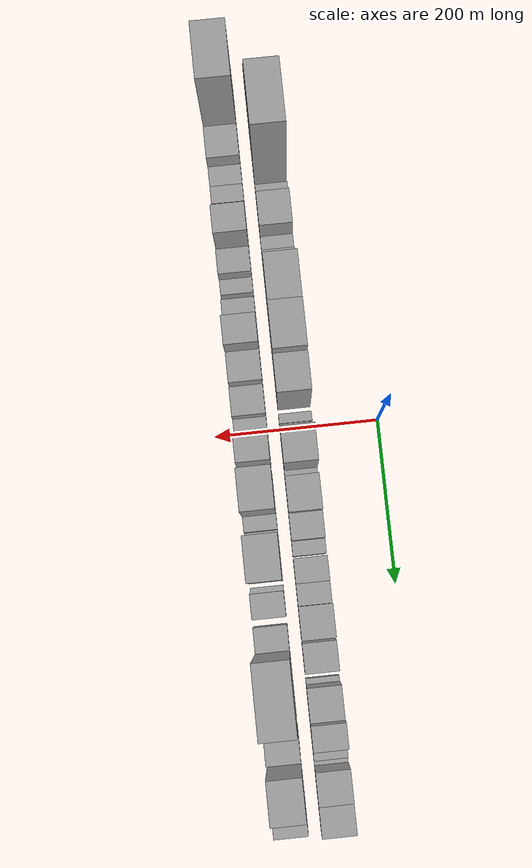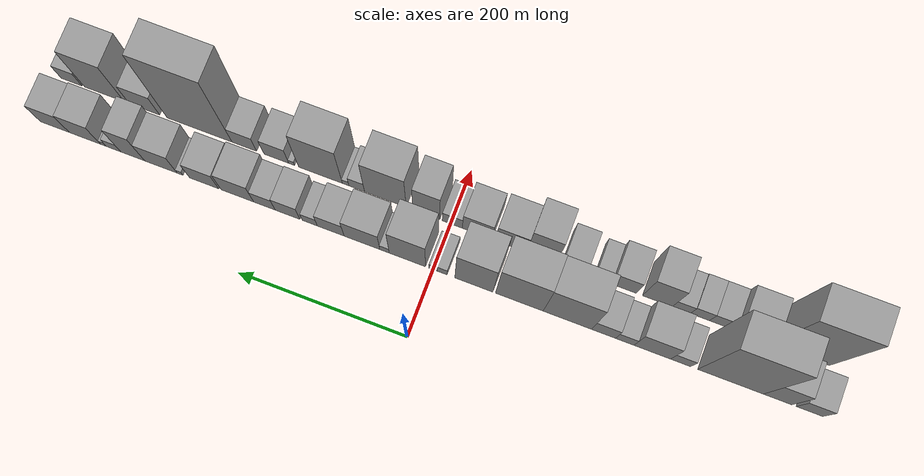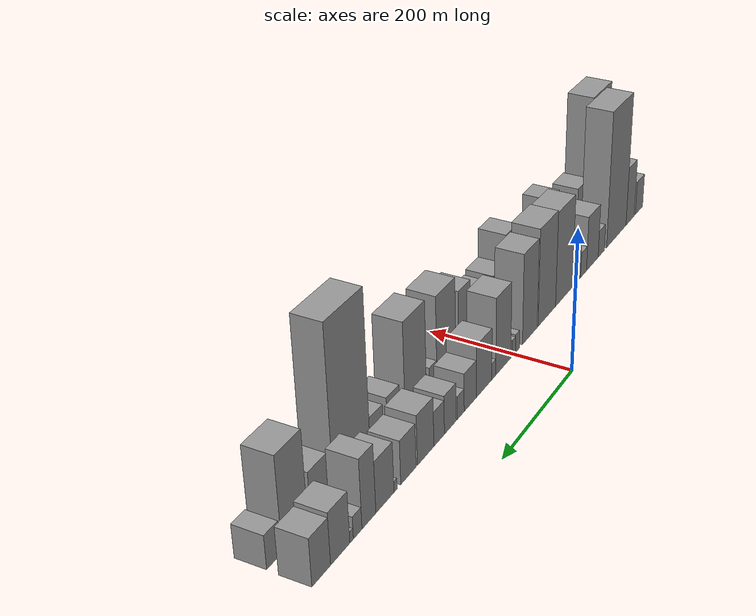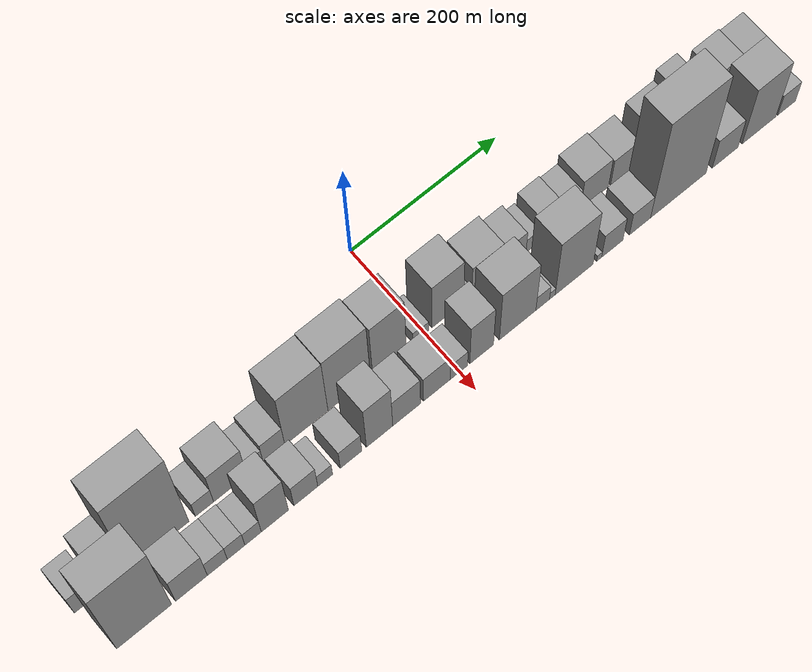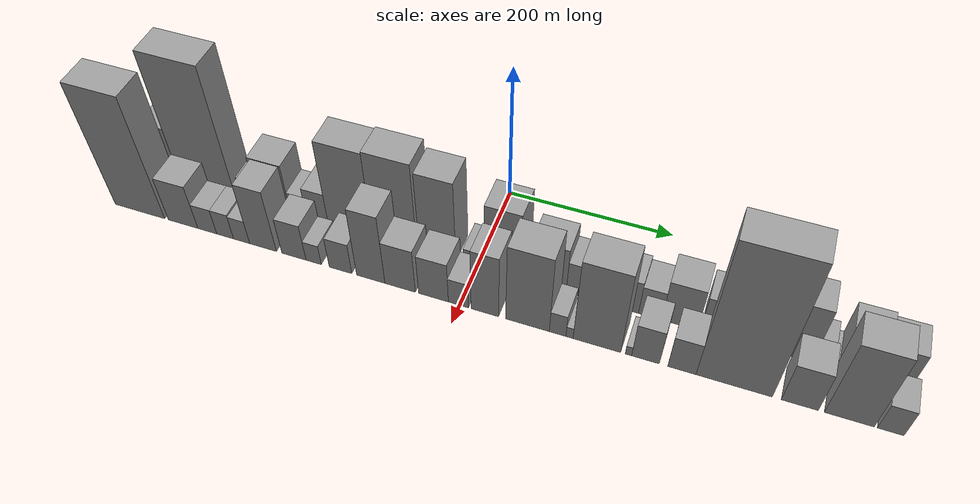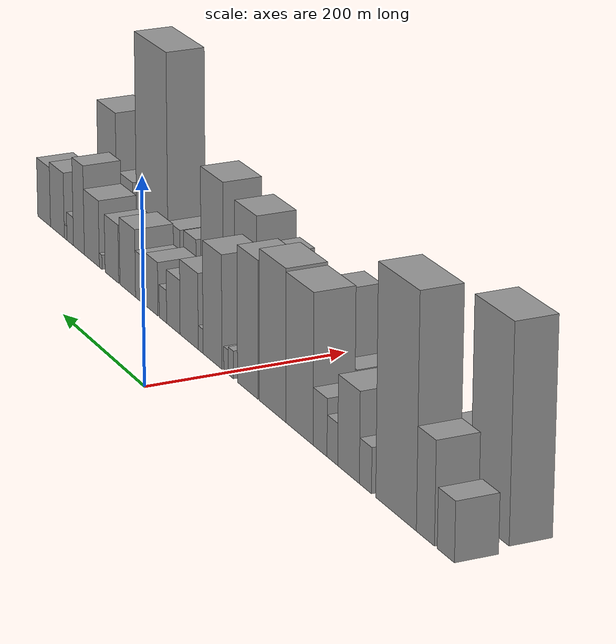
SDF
<sdf version="1.6">
 <world name="default">
  <scene>
   <sky><clouds><speed>12</speed></clouds></sky>
   <ambient>0.4 0.4 0.4 1</ambient>
   <background>0.7 0.7 0.7 1</background>
   <shadows>1</shadows>
  </scene>
  <gravity>0 0 -9.8066</gravity>
  <magnetic_field>6e-06 2.3e-05 -4.2e-05</magnetic_field>
  <physics default="0" name="default_physics" type="ode">
   <ode>
    <solver>
     <type>quick</type>
     <iters>10</iters>
     <sor>1.0</sor>
     <use_dynamic_moi_rescaling>0</use_dynamic_moi_rescaling>
    </solver>
    <constraints>
     <cfm>0</cfm>
     <erp>0.2</erp>
     <contact_max_correcting_vel>100</contact_max_correcting_vel>
     <contact_surface_layer>0.001</contact_surface_layer>
    </constraints>
   </ode>
   <max_step_size>0.004</max_step_size>
   <real_time_factor>1</real_time_factor>
   <real_time_update_rate>250</real_time_update_rate>
  </physics>
  <light name="sun" type="directional">
   <pose>0 0 10 0 0 0</pose>
   <diffuse>0.8 0.8 0.8 1</diffuse>
   <specular>0.2 0.2 0.2 1</specular>
   <attenuation>
    <range>1000</range>
    <constant>0.9</constant>
    <linear>0.01</linear>
    <quadratic>0.001</quadratic>
   </attenuation>
   <direction>-0.5 0.1 -0.9</direction>
  </light>
  <model name="building_1">
   <static>1</static>
   <pose>100.0000 -434.9105 0 0.000000 0.000000 0.000000</pose>
   <link name="link">
    <pose>0 0 27.00 0 0 0</pose>
    <collision name="collision"><geometry><box><size>40.0000 30.1790 54.0000</size></box></geometry></collision>
    <visual name="visual">
     <cast_shadows>0</cast_shadows>
     <geometry><box><size>40.0000 30.1790 54.0000</size></box></geometry>
     <material>
      <script>
       <uri>model://grey_wall/materials/scripts</uri>
       <uri>model://grey_wall/materials/textures</uri>
       <name>vrc/grey_wall</name>
      </script>
     </material>
    </visual>
   </link>
  </model>
  <model name="building_2">
   <static>1</static>
   <pose>100.0000 -398.6365 0 0.000000 0.000000 0.000000</pose>
   <link name="link">
    <pose>0 0 46.50 0 0 0</pose>
    <collision name="collision"><geometry><box><size>40.0000 32.3691 93.0000</size></box></geometry></collision>
    <visual name="visual">
     <cast_shadows>0</cast_shadows>
     <geometry><box><size>40.0000 32.3691 93.0000</size></box></geometry>
     <material>
      <script>
       <uri>model://grey_wall/materials/scripts</uri>
       <uri>model://grey_wall/materials/textures</uri>
       <name>vrc/grey_wall</name>
      </script>
     </material>
    </visual>
   </link>
  </model>
  <model name="building_3">
   <static>1</static>
   <pose>100.0000 -344.9618 0 0.000000 0.000000 0.000000</pose>
   <link name="link">
    <pose>0 0 105.00 0 0 0</pose>
    <collision name="collision"><geometry><box><size>40.0000 74.9803 210.0000</size></box></geometry></collision>
    <visual name="visual">
     <cast_shadows>0</cast_shadows>
     <geometry><box><size>40.0000 74.9803 210.0000</size></box></geometry>
     <material>
      <script>
       <uri>model://grey_wall/materials/scripts</uri>
       <uri>model://grey_wall/materials/textures</uri>
       <name>vrc/grey_wall</name>
      </script>
     </material>
    </visual>
   </link>
  </model>
  <model name="building_4">
   <static>1</static>
   <pose>100.0000 -287.8772 0 0.000000 0.000000 0.000000</pose>
   <link name="link">
    <pose>0 0 21.00 0 0 0</pose>
    <collision name="collision"><geometry><box><size>40.0000 23.1889 42.0000</size></box></geometry></collision>
    <visual name="visual">
     <cast_shadows>0</cast_shadows>
     <geometry><box><size>40.0000 23.1889 42.0000</size></box></geometry>
     <material>
      <script>
       <uri>model://grey_wall/materials/scripts</uri>
       <uri>model://grey_wall/materials/textures</uri>
       <name>vrc/grey_wall</name>
      </script>
     </material>
    </visual>
   </link>
  </model>
  <model name="building_5">
   <static>1</static>
   <pose>100.0000 -255.2332 0 0.000000 0.000000 0.000000</pose>
   <link name="link">
    <pose>0 0 42.00 0 0 0</pose>
    <collision name="collision"><geometry><box><size>40.0000 42.0992 84.0000</size></box></geometry></collision>
    <visual name="visual">
     <cast_shadows>0</cast_shadows>
     <geometry><box><size>40.0000 42.0992 84.0000</size></box></geometry>
     <material>
      <script>
       <uri>model://grey_wall/materials/scripts</uri>
       <uri>model://grey_wall/materials/textures</uri>
       <name>vrc/grey_wall</name>
      </script>
     </material>
    </visual>
   </link>
  </model>
  <model name="building_6">
   <static>1</static>
   <pose>100.0000 -223.5886 0 0.000000 0.000000 0.000000</pose>
   <link name="link">
    <pose>0 0 19.50 0 0 0</pose>
    <collision name="collision"><geometry><box><size>40.0000 21.1900 39.0000</size></box></geometry></collision>
    <visual name="visual">
     <cast_shadows>0</cast_shadows>
     <geometry><box><size>40.0000 21.1900 39.0000</size></box></geometry>
     <material>
      <script>
       <uri>model://grey_wall/materials/scripts</uri>
       <uri>model://grey_wall/materials/textures</uri>
       <name>vrc/grey_wall</name>
      </script>
     </material>
    </visual>
   </link>
  </model>
  <model name="building_7">
   <static>1</static>
   <pose>100.0000 -199.0091 0 0.000000 0.000000 0.000000</pose>
   <link name="link">
    <pose>0 0 27.00 0 0 0</pose>
    <collision name="collision"><geometry><box><size>40.0000 27.9691 54.0000</size></box></geometry></collision>
    <visual name="visual">
     <cast_shadows>0</cast_shadows>
     <geometry><box><size>40.0000 27.9691 54.0000</size></box></geometry>
     <material>
      <script>
       <uri>model://grey_wall/materials/scripts</uri>
       <uri>model://grey_wall/materials/textures</uri>
       <name>vrc/grey_wall</name>
      </script>
     </material>
    </visual>
   </link>
  </model>
  <model name="building_8">
   <static>1</static>
   <pose>100.0000 -156.8989 0 0.000000 0.000000 0.000000</pose>
   <link name="link">
    <pose>0 0 70.50 0 0 0</pose>
    <collision name="collision"><geometry><box><size>40.0000 56.2513 141.0000</size></box></geometry></collision>
    <visual name="visual">
     <cast_shadows>0</cast_shadows>
     <geometry><box><size>40.0000 56.2513 141.0000</size></box></geometry>
     <material>
      <script>
       <uri>model://grey_wall/materials/scripts</uri>
       <uri>model://grey_wall/materials/textures</uri>
       <name>vrc/grey_wall</name>
      </script>
     </material>
    </visual>
   </link>
  </model>
  <model name="building_9">
   <static>1</static>
   <pose>100.0000 -100.8620 0 0.000000 0.000000 0.000000</pose>
   <link name="link">
    <pose>0 0 72.00 0 0 0</pose>
    <collision name="collision"><geometry><box><size>40.0000 55.8225 144.0000</size></box></geometry></collision>
    <visual name="visual">
     <cast_shadows>0</cast_shadows>
     <geometry><box><size>40.0000 55.8225 144.0000</size></box></geometry>
     <material>
      <script>
       <uri>model://grey_wall/materials/scripts</uri>
       <uri>model://grey_wall/materials/textures</uri>
       <name>vrc/grey_wall</name>
      </script>
     </material>
    </visual>
   </link>
  </model>
  <model name="building_10">
   <static>1</static>
   <pose>100.0000 -47.5747 0 0.000000 0.000000 0.000000</pose>
   <link name="link">
    <pose>0 0 66.00 0 0 0</pose>
    <collision name="collision"><geometry><box><size>40.0000 44.7520 132.0000</size></box></geometry></collision>
    <visual name="visual">
     <cast_shadows>0</cast_shadows>
     <geometry><box><size>40.0000 44.7520 132.0000</size></box></geometry>
     <material>
      <script>
       <uri>model://grey_wall/materials/scripts</uri>
       <uri>model://grey_wall/materials/textures</uri>
       <name>vrc/grey_wall</name>
      </script>
     </material>
    </visual>
   </link>
  </model>
  <model name="building_11">
   <static>1</static>
   <pose>100.0000 -10.2897 0 0.000000 0.000000 0.000000</pose>
   <link name="link">
    <pose>0 0 13.50 0 0 0</pose>
    <collision name="collision"><geometry><box><size>40.0000 11.8181 27.0000</size></box></geometry></collision>
    <visual name="visual">
     <cast_shadows>0</cast_shadows>
     <geometry><box><size>40.0000 11.8181 27.0000</size></box></geometry>
     <material>
      <script>
       <uri>model://grey_wall/materials/scripts</uri>
       <uri>model://grey_wall/materials/textures</uri>
       <name>vrc/grey_wall</name>
      </script>
     </material>
    </visual>
   </link>
  </model>
  <model name="building_12">
   <static>1</static>
   <pose>100.0000 0.4533 0 0.000000 0.000000 0.000000</pose>
   <link name="link">
    <pose>0 0 12.00 0 0 0</pose>
    <collision name="collision"><geometry><box><size>40.0000 9.6679 24.0000</size></box></geometry></collision>
    <visual name="visual">
     <cast_shadows>0</cast_shadows>
     <geometry><box><size>40.0000 9.6679 24.0000</size></box></geometry>
     <material>
      <script>
       <uri>model://grey_wall/materials/scripts</uri>
       <uri>model://grey_wall/materials/textures</uri>
       <name>vrc/grey_wall</name>
      </script>
     </material>
    </visual>
   </link>
  </model>
  <model name="building_13">
   <static>1</static>
   <pose>100.0000 30.7501 0 0.000000 0.000000 0.000000</pose>
   <link name="link">
    <pose>0 0 55.50 0 0 0</pose>
    <collision name="collision"><geometry><box><size>40.0000 42.9259 111.0000</size></box></geometry></collision>
    <visual name="visual">
     <cast_shadows>0</cast_shadows>
     <geometry><box><size>40.0000 42.9259 111.0000</size></box></geometry>
     <material>
      <script>
       <uri>model://grey_wall/materials/scripts</uri>
       <uri>model://grey_wall/materials/textures</uri>
       <name>vrc/grey_wall</name>
      </script>
     </material>
    </visual>
   </link>
  </model>
  <model name="building_14">
   <static>1</static>
   <pose>100.0000 57.7907 0 0.000000 0.000000 0.000000</pose>
   <link name="link">
    <pose>0 0 12.00 0 0 0</pose>
    <collision name="collision"><geometry><box><size>40.0000 11.1553 24.0000</size></box></geometry></collision>
    <visual name="visual">
     <cast_shadows>0</cast_shadows>
     <geometry><box><size>40.0000 11.1553 24.0000</size></box></geometry>
     <material>
      <script>
       <uri>model://grey_wall/materials/scripts</uri>
       <uri>model://grey_wall/materials/textures</uri>
       <name>vrc/grey_wall</name>
      </script>
     </material>
    </visual>
   </link>
  </model>
  <model name="building_15">
   <static>1</static>
   <pose>100.0000 84.5505 0 0.000000 0.000000 0.000000</pose>
   <link name="link">
    <pose>0 0 37.50 0 0 0</pose>
    <collision name="collision"><geometry><box><size>40.0000 42.3644 75.0000</size></box></geometry></collision>
    <visual name="visual">
     <cast_shadows>0</cast_shadows>
     <geometry><box><size>40.0000 42.3644 75.0000</size></box></geometry>
     <material>
      <script>
       <uri>model://grey_wall/materials/scripts</uri>
       <uri>model://grey_wall/materials/textures</uri>
       <name>vrc/grey_wall</name>
      </script>
     </material>
    </visual>
   </link>
  </model>
  <model name="building_16">
   <static>1</static>
   <pose>100.0000 121.7523 0 0.000000 0.000000 0.000000</pose>
   <link name="link">
    <pose>0 0 27.00 0 0 0</pose>
    <collision name="collision"><geometry><box><size>40.0000 32.0391 54.0000</size></box></geometry></collision>
    <visual name="visual">
     <cast_shadows>0</cast_shadows>
     <geometry><box><size>40.0000 32.0391 54.0000</size></box></geometry>
     <material>
      <script>
       <uri>model://grey_wall/materials/scripts</uri>
       <uri>model://grey_wall/materials/textures</uri>
       <name>vrc/grey_wall</name>
      </script>
     </material>
    </visual>
   </link>
  </model>
  <model name="building_17">
   <static>1</static>
   <pose>100.0000 146.7211 0 0.000000 0.000000 0.000000</pose>
   <link name="link">
    <pose>0 0 16.50 0 0 0</pose>
    <collision name="collision"><geometry><box><size>40.0000 17.8985 33.0000</size></box></geometry></collision>
    <visual name="visual">
     <cast_shadows>0</cast_shadows>
     <geometry><box><size>40.0000 17.8985 33.0000</size></box></geometry>
     <material>
      <script>
       <uri>model://grey_wall/materials/scripts</uri>
       <uri>model://grey_wall/materials/textures</uri>
       <name>vrc/grey_wall</name>
      </script>
     </material>
    </visual>
   </link>
  </model>
  <model name="building_18">
   <static>1</static>
   <pose>100.0000 173.4010 0 0.000000 0.000000 0.000000</pose>
   <link name="link">
    <pose>0 0 27.00 0 0 0</pose>
    <collision name="collision"><geometry><box><size>40.0000 29.4613 54.0000</size></box></geometry></collision>
    <visual name="visual">
     <cast_shadows>0</cast_shadows>
     <geometry><box><size>40.0000 29.4613 54.0000</size></box></geometry>
     <material>
      <script>
       <uri>model://grey_wall/materials/scripts</uri>
       <uri>model://grey_wall/materials/textures</uri>
       <name>vrc/grey_wall</name>
      </script>
     </material>
    </visual>
   </link>
  </model>
  <model name="building_19">
   <static>1</static>
   <pose>100.0000 201.0872 0 0.000000 0.000000 0.000000</pose>
   <link name="link">
    <pose>0 0 24.00 0 0 0</pose>
    <collision name="collision"><geometry><box><size>40.0000 25.9112 48.0000</size></box></geometry></collision>
    <visual name="visual">
     <cast_shadows>0</cast_shadows>
     <geometry><box><size>40.0000 25.9112 48.0000</size></box></geometry>
     <material>
      <script>
       <uri>model://grey_wall/materials/scripts</uri>
       <uri>model://grey_wall/materials/textures</uri>
       <name>vrc/grey_wall</name>
      </script>
     </material>
    </visual>
   </link>
  </model>
  <model name="building_20">
   <static>1</static>
   <pose>100.0000 233.7069 0 0.000000 0.000000 0.000000</pose>
   <link name="link">
    <pose>0 0 34.50 0 0 0</pose>
    <collision name="collision"><geometry><box><size>40.0000 39.3281 69.0000</size></box></geometry></collision>
    <visual name="visual">
     <cast_shadows>0</cast_shadows>
     <geometry><box><size>40.0000 39.3281 69.0000</size></box></geometry>
     <material>
      <script>
       <uri>model://grey_wall/materials/scripts</uri>
       <uri>model://grey_wall/materials/textures</uri>
       <name>vrc/grey_wall</name>
      </script>
     </material>
    </visual>
   </link>
  </model>
  <model name="building_21">
   <static>1</static>
   <pose>100.0000 273.9371 0 0.000000 0.000000 0.000000</pose>
   <link name="link">
    <pose>0 0 30.00 0 0 0</pose>
    <collision name="collision"><geometry><box><size>40.0000 35.1323 60.0000</size></box></geometry></collision>
    <visual name="visual">
     <cast_shadows>0</cast_shadows>
     <geometry><box><size>40.0000 35.1323 60.0000</size></box></geometry>
     <material>
      <script>
       <uri>model://grey_wall/materials/scripts</uri>
       <uri>model://grey_wall/materials/textures</uri>
       <name>vrc/grey_wall</name>
      </script>
     </material>
    </visual>
   </link>
  </model>
  <model name="building_22">
   <static>1</static>
   <pose>100.0000 303.0156 0 0.000000 0.000000 0.000000</pose>
   <link name="link">
    <pose>0 0 7.50 0 0 0</pose>
    <collision name="collision"><geometry><box><size>40.0000 7.0247 15.0000</size></box></geometry></collision>
    <visual name="visual">
     <cast_shadows>0</cast_shadows>
     <geometry><box><size>40.0000 7.0247 15.0000</size></box></geometry>
     <material>
      <script>
       <uri>model://grey_wall/materials/scripts</uri>
       <uri>model://grey_wall/materials/textures</uri>
       <name>vrc/grey_wall</name>
      </script>
     </material>
    </visual>
   </link>
  </model>
  <model name="building_23">
   <static>1</static>
   <pose>100.0000 326.2708 0 0.000000 0.000000 0.000000</pose>
   <link name="link">
    <pose>0 0 34.50 0 0 0</pose>
    <collision name="collision"><geometry><box><size>40.0000 39.4858 69.0000</size></box></geometry></collision>
    <visual name="visual">
     <cast_shadows>0</cast_shadows>
     <geometry><box><size>40.0000 39.4858 69.0000</size></box></geometry>
     <material>
      <script>
       <uri>model://grey_wall/materials/scripts</uri>
       <uri>model://grey_wall/materials/textures</uri>
       <name>vrc/grey_wall</name>
      </script>
     </material>
    </visual>
   </link>
  </model>
  <model name="building_24">
   <static>1</static>
   <pose>100.0000 360.6409 0 0.000000 0.000000 0.000000</pose>
   <link name="link">
    <pose>0 0 46.50 0 0 0</pose>
    <collision name="collision"><geometry><box><size>40.0000 29.2542 93.0000</size></box></geometry></collision>
    <visual name="visual">
     <cast_shadows>0</cast_shadows>
     <geometry><box><size>40.0000 29.2542 93.0000</size></box></geometry>
     <material>
      <script>
       <uri>model://grey_wall/materials/scripts</uri>
       <uri>model://grey_wall/materials/textures</uri>
       <name>vrc/grey_wall</name>
      </script>
     </material>
    </visual>
   </link>
  </model>
  <model name="building_25">
   <static>1</static>
   <pose>100.0000 384.1353 0 0.000000 0.000000 0.000000</pose>
   <link name="link">
    <pose>0 0 15.00 0 0 0</pose>
    <collision name="collision"><geometry><box><size>40.0000 17.7346 30.0000</size></box></geometry></collision>
    <visual name="visual">
     <cast_shadows>0</cast_shadows>
     <geometry><box><size>40.0000 17.7346 30.0000</size></box></geometry>
     <material>
      <script>
       <uri>model://grey_wall/materials/scripts</uri>
       <uri>model://grey_wall/materials/textures</uri>
       <name>vrc/grey_wall</name>
      </script>
     </material>
    </visual>
   </link>
  </model>
  <model name="building_26">
   <static>1</static>
   <pose>100.0000 396.5348 0 0.000000 0.000000 0.000000</pose>
   <link name="link">
    <pose>0 0 7.50 0 0 0</pose>
    <collision name="collision"><geometry><box><size>40.0000 7.0643 15.0000</size></box></geometry></collision>
    <visual name="visual">
     <cast_shadows>0</cast_shadows>
     <geometry><box><size>40.0000 7.0643 15.0000</size></box></geometry>
     <material>
      <script>
       <uri>model://grey_wall/materials/scripts</uri>
       <uri>model://grey_wall/materials/textures</uri>
       <name>vrc/grey_wall</name>
      </script>
     </material>
    </visual>
   </link>
  </model>
  <model name="building_27">
   <static>1</static>
   <pose>100.0000 419.1599 0 0.000000 0.000000 0.000000</pose>
   <link name="link">
    <pose>0 0 34.50 0 0 0</pose>
    <collision name="collision"><geometry><box><size>40.0000 38.1860 69.0000</size></box></geometry></collision>
    <visual name="visual">
     <cast_shadows>0</cast_shadows>
     <geometry><box><size>40.0000 38.1860 69.0000</size></box></geometry>
     <material>
      <script>
       <uri>model://grey_wall/materials/scripts</uri>
       <uri>model://grey_wall/materials/textures</uri>
       <name>vrc/grey_wall</name>
      </script>
     </material>
    </visual>
   </link>
  </model>
  <model name="building_28">
   <static>1</static>
   <pose>100.0000 456.1547 0 0.000000 0.000000 0.000000</pose>
   <link name="link">
    <pose>0 0 31.50 0 0 0</pose>
    <collision name="collision"><geometry><box><size>40.0000 35.8036 63.0000</size></box></geometry></collision>
    <visual name="visual">
     <cast_shadows>0</cast_shadows>
     <geometry><box><size>40.0000 35.8036 63.0000</size></box></geometry>
     <material>
      <script>
       <uri>model://grey_wall/materials/scripts</uri>
       <uri>model://grey_wall/materials/textures</uri>
       <name>vrc/grey_wall</name>
      </script>
     </material>
    </visual>
   </link>
  </model>
  <model name="building_29">
   <static>1</static>
   <pose>155.0000 -406.1142 0 0.000000 0.000000 0.000000</pose>
   <link name="link">
    <pose>0 0 97.50 0 0 0</pose>
    <collision name="collision"><geometry><box><size>40.0000 67.7716 195.0000</size></box></geometry></collision>
    <visual name="visual">
     <cast_shadows>0</cast_shadows>
     <geometry><box><size>40.0000 67.7716 195.0000</size></box></geometry>
     <material>
      <script>
       <uri>model://grey_wall/materials/scripts</uri>
       <uri>model://grey_wall/materials/textures</uri>
       <name>vrc/grey_wall</name>
      </script>
     </material>
    </visual>
   </link>
  </model>
  <model name="building_30">
   <static>1</static>
   <pose>155.0000 -347.3645 0 0.000000 0.000000 0.000000</pose>
   <link name="link">
    <pose>0 0 36.00 0 0 0</pose>
    <collision name="collision"><geometry><box><size>40.0000 39.7276 72.0000</size></box></geometry></collision>
    <visual name="visual">
     <cast_shadows>0</cast_shadows>
     <geometry><box><size>40.0000 39.7276 72.0000</size></box></geometry>
     <material>
      <script>
       <uri>model://grey_wall/materials/scripts</uri>
       <uri>model://grey_wall/materials/textures</uri>
       <name>vrc/grey_wall</name>
      </script>
     </material>
    </visual>
   </link>
  </model>
  <model name="building_31">
   <static>1</static>
   <pose>155.0000 -314.9671 0 0.000000 0.000000 0.000000</pose>
   <link name="link">
    <pose>0 0 21.00 0 0 0</pose>
    <collision name="collision"><geometry><box><size>40.0000 25.0672 42.0000</size></box></geometry></collision>
    <visual name="visual">
     <cast_shadows>0</cast_shadows>
     <geometry><box><size>40.0000 25.0672 42.0000</size></box></geometry>
     <material>
      <script>
       <uri>model://grey_wall/materials/scripts</uri>
       <uri>model://grey_wall/materials/textures</uri>
       <name>vrc/grey_wall</name>
      </script>
     </material>
    </visual>
   </link>
  </model>
  <model name="building_32">
   <static>1</static>
   <pose>155.0000 -291.3959 0 0.000000 0.000000 0.000000</pose>
   <link name="link">
    <pose>0 0 21.00 0 0 0</pose>
    <collision name="collision"><geometry><box><size>40.0000 22.0754 42.0000</size></box></geometry></collision>
    <visual name="visual">
     <cast_shadows>0</cast_shadows>
     <geometry><box><size>40.0000 22.0754 42.0000</size></box></geometry>
     <material>
      <script>
       <uri>model://grey_wall/materials/scripts</uri>
       <uri>model://grey_wall/materials/textures</uri>
       <name>vrc/grey_wall</name>
      </script>
     </material>
    </visual>
   </link>
  </model>
  <model name="building_33">
   <static>1</static>
   <pose>155.0000 -269.8761 0 0.000000 0.000000 0.000000</pose>
   <link name="link">
    <pose>0 0 19.50 0 0 0</pose>
    <collision name="collision"><geometry><box><size>40.0000 20.9642 39.0000</size></box></geometry></collision>
    <visual name="visual">
     <cast_shadows>0</cast_shadows>
     <geometry><box><size>40.0000 20.9642 39.0000</size></box></geometry>
     <material>
      <script>
       <uri>model://grey_wall/materials/scripts</uri>
       <uri>model://grey_wall/materials/textures</uri>
       <name>vrc/grey_wall</name>
      </script>
     </material>
    </visual>
   </link>
  </model>
  <model name="building_34">
   <static>1</static>
   <pose>155.0000 -242.1213 0 0.000000 0.000000 0.000000</pose>
   <link name="link">
    <pose>0 0 51.00 0 0 0</pose>
    <collision name="collision"><geometry><box><size>40.0000 34.5453 102.0000</size></box></geometry></collision>
    <visual name="visual">
     <cast_shadows>0</cast_shadows>
     <geometry><box><size>40.0000 34.5453 102.0000</size></box></geometry>
     <material>
      <script>
       <uri>model://grey_wall/materials/scripts</uri>
       <uri>model://grey_wall/materials/textures</uri>
       <name>vrc/grey_wall</name>
      </script>
     </material>
    </visual>
   </link>
  </model>
  <model name="building_35">
   <static>1</static>
   <pose>155.0000 -202.4794 0 0.000000 0.000000 0.000000</pose>
   <link name="link">
    <pose>0 0 30.00 0 0 0</pose>
    <collision name="collision"><geometry><box><size>40.0000 30.7386 60.0000</size></box></geometry></collision>
    <visual name="visual">
     <cast_shadows>0</cast_shadows>
     <geometry><box><size>40.0000 30.7386 60.0000</size></box></geometry>
     <material>
      <script>
       <uri>model://grey_wall/materials/scripts</uri>
       <uri>model://grey_wall/materials/textures</uri>
       <name>vrc/grey_wall</name>
      </script>
     </material>
    </visual>
   </link>
  </model>
  <model name="building_36">
   <static>1</static>
   <pose>155.0000 -177.5054 0 0.000000 0.000000 0.000000</pose>
   <link name="link">
    <pose>0 0 16.50 0 0 0</pose>
    <collision name="collision"><geometry><box><size>40.0000 19.2093 33.0000</size></box></geometry></collision>
    <visual name="visual">
     <cast_shadows>0</cast_shadows>
     <geometry><box><size>40.0000 19.2093 33.0000</size></box></geometry>
     <material>
      <script>
       <uri>model://grey_wall/materials/scripts</uri>
       <uri>model://grey_wall/materials/textures</uri>
       <name>vrc/grey_wall</name>
      </script>
     </material>
    </visual>
   </link>
  </model>
  <model name="building_37">
   <static>1</static>
   <pose>155.0000 -143.8969 0 0.000000 0.000000 0.000000</pose>
   <link name="link">
    <pose>0 0 25.50 0 0 0</pose>
    <collision name="collision"><geometry><box><size>40.0000 28.0079 51.0000</size></box></geometry></collision>
    <visual name="visual">
     <cast_shadows>0</cast_shadows>
     <geometry><box><size>40.0000 28.0079 51.0000</size></box></geometry>
     <material>
      <script>
       <uri>model://grey_wall/materials/scripts</uri>
       <uri>model://grey_wall/materials/textures</uri>
       <name>vrc/grey_wall</name>
      </script>
     </material>
    </visual>
   </link>
  </model>
  <model name="building_38">
   <static>1</static>
   <pose>155.0000 -106.5853 0 0.000000 0.000000 0.000000</pose>
   <link name="link">
    <pose>0 0 57.00 0 0 0</pose>
    <collision name="collision"><geometry><box><size>40.0000 34.6152 114.0000</size></box></geometry></collision>
    <visual name="visual">
     <cast_shadows>0</cast_shadows>
     <geometry><box><size>40.0000 34.6152 114.0000</size></box></geometry>
     <material>
      <script>
       <uri>model://grey_wall/materials/scripts</uri>
       <uri>model://grey_wall/materials/textures</uri>
       <name>vrc/grey_wall</name>
      </script>
     </material>
    </visual>
   </link>
  </model>
  <model name="building_39">
   <static>1</static>
   <pose>155.0000 -70.9049 0 0.000000 0.000000 0.000000</pose>
   <link name="link">
    <pose>0 0 36.00 0 0 0</pose>
    <collision name="collision"><geometry><box><size>40.0000 36.7455 72.0000</size></box></geometry></collision>
    <visual name="visual">
     <cast_shadows>0</cast_shadows>
     <geometry><box><size>40.0000 36.7455 72.0000</size></box></geometry>
     <material>
      <script>
       <uri>model://grey_wall/materials/scripts</uri>
       <uri>model://grey_wall/materials/textures</uri>
       <name>vrc/grey_wall</name>
      </script>
     </material>
    </visual>
   </link>
  </model>
  <model name="building_40">
   <static>1</static>
   <pose>155.0000 -30.8844 0 0.000000 0.000000 0.000000</pose>
   <link name="link">
    <pose>0 0 33.00 0 0 0</pose>
    <collision name="collision"><geometry><box><size>40.0000 35.2955 66.0000</size></box></geometry></collision>
    <visual name="visual">
     <cast_shadows>0</cast_shadows>
     <geometry><box><size>40.0000 35.2955 66.0000</size></box></geometry>
     <material>
      <script>
       <uri>model://grey_wall/materials/scripts</uri>
       <uri>model://grey_wall/materials/textures</uri>
       <name>vrc/grey_wall</name>
      </script>
     </material>
    </visual>
   </link>
  </model>
  <model name="building_41">
   <static>1</static>
   <pose>155.0000 -1.3992 0 0.000000 0.000000 0.000000</pose>
   <link name="link">
    <pose>0 0 21.00 0 0 0</pose>
    <collision name="collision"><geometry><box><size>40.0000 23.6749 42.0000</size></box></geometry></collision>
    <visual name="visual">
     <cast_shadows>0</cast_shadows>
     <geometry><box><size>40.0000 23.6749 42.0000</size></box></geometry>
     <material>
      <script>
       <uri>model://grey_wall/materials/scripts</uri>
       <uri>model://grey_wall/materials/textures</uri>
       <name>vrc/grey_wall</name>
      </script>
     </material>
    </visual>
   </link>
  </model>
  <model name="building_42">
   <static>1</static>
   <pose>155.0000 29.4156 0 0.000000 0.000000 0.000000</pose>
   <link name="link">
    <pose>0 0 51.00 0 0 0</pose>
    <collision name="collision"><geometry><box><size>40.0000 31.9546 102.0000</size></box></geometry></collision>
    <visual name="visual">
     <cast_shadows>0</cast_shadows>
     <geometry><box><size>40.0000 31.9546 102.0000</size></box></geometry>
     <material>
      <script>
       <uri>model://grey_wall/materials/scripts</uri>
       <uri>model://grey_wall/materials/textures</uri>
       <name>vrc/grey_wall</name>
      </script>
     </material>
    </visual>
   </link>
  </model>
  <model name="building_43">
   <static>1</static>
   <pose>155.0000 78.2819 0 0.000000 0.000000 0.000000</pose>
   <link name="link">
    <pose>0 0 63.00 0 0 0</pose>
    <collision name="collision"><geometry><box><size>40.0000 49.7780 126.0000</size></box></geometry></collision>
    <visual name="visual">
     <cast_shadows>0</cast_shadows>
     <geometry><box><size>40.0000 49.7780 126.0000</size></box></geometry>
     <material>
      <script>
       <uri>model://grey_wall/materials/scripts</uri>
       <uri>model://grey_wall/materials/textures</uri>
       <name>vrc/grey_wall</name>
      </script>
     </material>
    </visual>
   </link>
  </model>
  <model name="building_44">
   <static>1</static>
   <pose>155.0000 112.5062 0 0.000000 0.000000 0.000000</pose>
   <link name="link">
    <pose>0 0 18.00 0 0 0</pose>
    <collision name="collision"><geometry><box><size>40.0000 18.6706 36.0000</size></box></geometry></collision>
    <visual name="visual">
     <cast_shadows>0</cast_shadows>
     <geometry><box><size>40.0000 18.6706 36.0000</size></box></geometry>
     <material>
      <script>
       <uri>model://grey_wall/materials/scripts</uri>
       <uri>model://grey_wall/materials/textures</uri>
       <name>vrc/grey_wall</name>
      </script>
     </material>
    </visual>
   </link>
  </model>
  <model name="building_45">
   <static>1</static>
   <pose>155.0000 125.8176 0 0.000000 0.000000 0.000000</pose>
   <link name="link">
    <pose>0 0 9.00 0 0 0</pose>
    <collision name="collision"><geometry><box><size>40.0000 7.9524 18.0000</size></box></geometry></collision>
    <visual name="visual">
     <cast_shadows>0</cast_shadows>
     <geometry><box><size>40.0000 7.9524 18.0000</size></box></geometry>
     <material>
      <script>
       <uri>model://grey_wall/materials/scripts</uri>
       <uri>model://grey_wall/materials/textures</uri>
       <name>vrc/grey_wall</name>
      </script>
     </material>
    </visual>
   </link>
  </model>
  <model name="building_46">
   <static>1</static>
   <pose>155.0000 156.0672 0 0.000000 0.000000 0.000000</pose>
   <link name="link">
    <pose>0 0 67.50 0 0 0</pose>
    <collision name="collision"><geometry><box><size>40.0000 52.5467 135.0000</size></box></geometry></collision>
    <visual name="visual">
     <cast_shadows>0</cast_shadows>
     <geometry><box><size>40.0000 52.5467 135.0000</size></box></geometry>
     <material>
      <script>
       <uri>model://grey_wall/materials/scripts</uri>
       <uri>model://grey_wall/materials/textures</uri>
       <name>vrc/grey_wall</name>
      </script>
     </material>
    </visual>
   </link>
  </model>
  <model name="building_47">
   <static>1</static>
   <pose>155.0000 190.8280 0 0.000000 0.000000 0.000000</pose>
   <link name="link">
    <pose>0 0 7.50 0 0 0</pose>
    <collision name="collision"><geometry><box><size>40.0000 6.9749 15.0000</size></box></geometry></collision>
    <visual name="visual">
     <cast_shadows>0</cast_shadows>
     <geometry><box><size>40.0000 6.9749 15.0000</size></box></geometry>
     <material>
      <script>
       <uri>model://grey_wall/materials/scripts</uri>
       <uri>model://grey_wall/materials/textures</uri>
       <name>vrc/grey_wall</name>
      </script>
     </material>
    </visual>
   </link>
  </model>
  <model name="building_48">
   <static>1</static>
   <pose>155.0000 209.2315 0 0.000000 0.000000 0.000000</pose>
   <link name="link">
    <pose>0 0 28.50 0 0 0</pose>
    <collision name="collision"><geometry><box><size>40.0000 29.8321 57.0000</size></box></geometry></collision>
    <visual name="visual">
     <cast_shadows>0</cast_shadows>
     <geometry><box><size>40.0000 29.8321 57.0000</size></box></geometry>
     <material>
      <script>
       <uri>model://grey_wall/materials/scripts</uri>
       <uri>model://grey_wall/materials/textures</uri>
       <name>vrc/grey_wall</name>
      </script>
     </material>
    </visual>
   </link>
  </model>
  <model name="building_49">
   <static>1</static>
   <pose>155.0000 248.1320 0 0.000000 0.000000 0.000000</pose>
   <link name="link">
    <pose>0 0 27.00 0 0 0</pose>
    <collision name="collision"><geometry><box><size>40.0000 29.9689 54.0000</size></box></geometry></collision>
    <visual name="visual">
     <cast_shadows>0</cast_shadows>
     <geometry><box><size>40.0000 29.9689 54.0000</size></box></geometry>
     <material>
      <script>
       <uri>model://grey_wall/materials/scripts</uri>
       <uri>model://grey_wall/materials/textures</uri>
       <name>vrc/grey_wall</name>
      </script>
     </material>
    </visual>
   </link>
  </model>
  <model name="building_50">
   <static>1</static>
   <pose>155.0000 302.7714 0 0.000000 0.000000 0.000000</pose>
   <link name="link">
    <pose>0 0 112.50 0 0 0</pose>
    <collision name="collision"><geometry><box><size>40.0000 79.3099 225.0000</size></box></geometry></collision>
    <visual name="visual">
     <cast_shadows>0</cast_shadows>
     <geometry><box><size>40.0000 79.3099 225.0000</size></box></geometry>
     <material>
      <script>
       <uri>model://grey_wall/materials/scripts</uri>
       <uri>model://grey_wall/materials/textures</uri>
       <name>vrc/grey_wall</name>
      </script>
     </material>
    </visual>
   </link>
  </model>
  <model name="building_51">
   <static>1</static>
   <pose>155.0000 370.1053 0 0.000000 0.000000 0.000000</pose>
   <link name="link">
    <pose>0 0 33.00 0 0 0</pose>
    <collision name="collision"><geometry><box><size>40.0000 37.3581 66.0000</size></box></geometry></collision>
    <visual name="visual">
     <cast_shadows>0</cast_shadows>
     <geometry><box><size>40.0000 37.3581 66.0000</size></box></geometry>
     <material>
      <script>
       <uri>model://grey_wall/materials/scripts</uri>
       <uri>model://grey_wall/materials/textures</uri>
       <name>vrc/grey_wall</name>
      </script>
     </material>
    </visual>
   </link>
  </model>
  <model name="building_52">
   <static>1</static>
   <pose>155.0000 419.4232 0 0.000000 0.000000 0.000000</pose>
   <link name="link">
    <pose>0 0 63.00 0 0 0</pose>
    <collision name="collision"><geometry><box><size>40.0000 49.2776 126.0000</size></box></geometry></collision>
    <visual name="visual">
     <cast_shadows>0</cast_shadows>
     <geometry><box><size>40.0000 49.2776 126.0000</size></box></geometry>
     <material>
      <script>
       <uri>model://grey_wall/materials/scripts</uri>
       <uri>model://grey_wall/materials/textures</uri>
       <name>vrc/grey_wall</name>
      </script>
     </material>
    </visual>
   </link>
  </model>
  <model name="building_53">
   <static>1</static>
   <pose>155.0000 460.0002 0 0.000000 0.000000 0.000000</pose>
   <link name="link">
    <pose>0 0 22.50 0 0 0</pose>
    <collision name="collision"><geometry><box><size>40.0000 25.8765 45.0000</size></box></geometry></collision>
    <visual name="visual">
     <cast_shadows>0</cast_shadows>
     <geometry><box><size>40.0000 25.8765 45.0000</size></box></geometry>
     <material>
      <script>
       <uri>model://grey_wall/materials/scripts</uri>
       <uri>model://grey_wall/materials/textures</uri>
       <name>vrc/grey_wall</name>
      </script>
     </material>
    </visual>
   </link>
  </model>
 </world>
</sdf>
